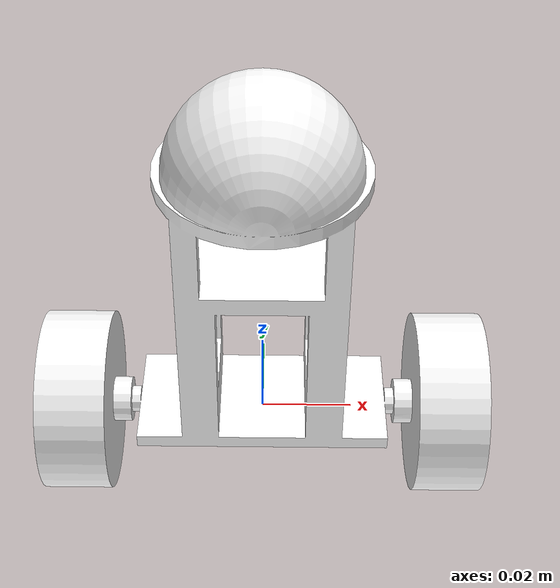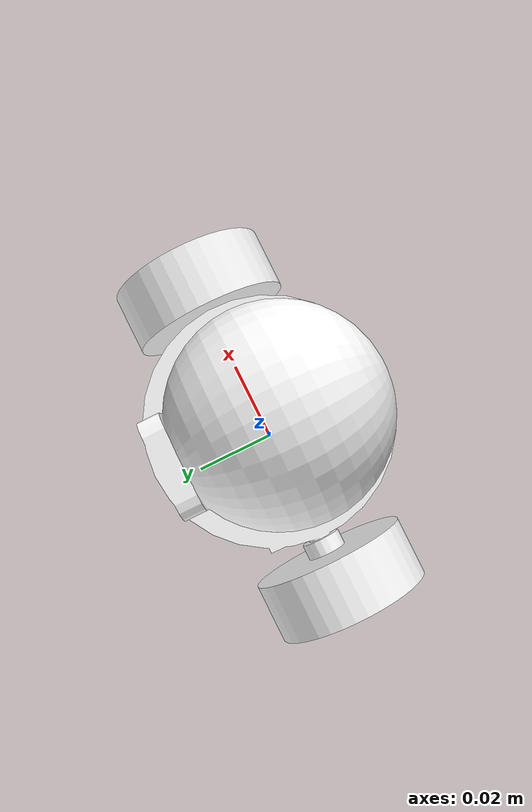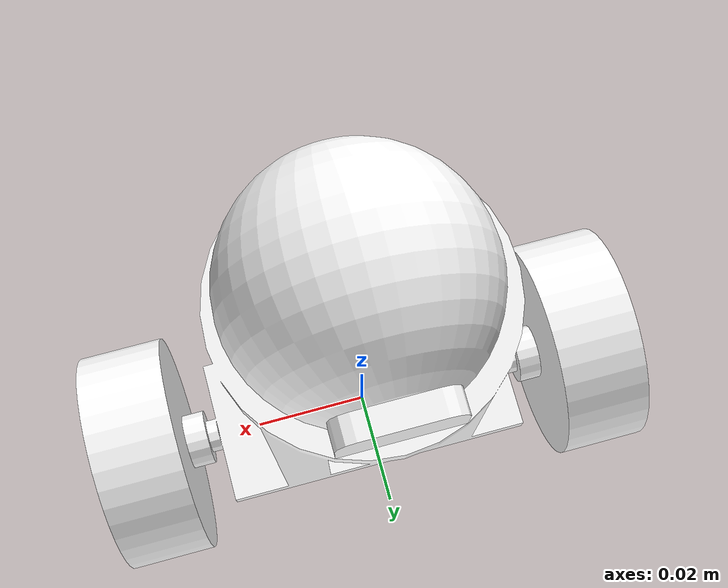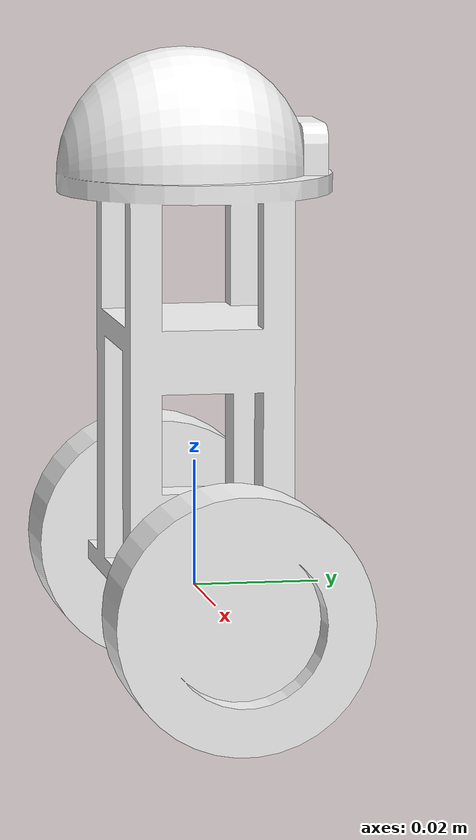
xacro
<?xml version="1.0"?>
<robot name="mycar" xmlns:xacro="http://www.ros.org/wiki/xacro">

    <xacro:include filename="$(find mycar_description)/urdf/xacro/mycar.gazebo" />

  <link name="base_footprint">
      <visual>
          <geometry>
                  <box size="0.001 0.001 0.001"/>
              </geometry>
          <origin rpy="0 0 0" xyz="-3.46944695195361E-18 -0.000646422945483935 0"/>
      </visual>
  </link>

  <gazebo reference="base_footprint">
      <material>Gazebo/Green</material>
      <turnGravityOff>false</turnGravityOff>
  </gazebo>

  <joint name="base_footprint_joint" type="fixed">
      <origin xyz="0 0 0" />
      <parent link="base_footprint" />
      <child link="body" />
  </joint>

  <link name="body">
    <inertial>
      <origin
        xyz="0 -0.000646422945483935 0.0455884253598942"
        rpy="0 0 0" />
      <mass
        value="0.0365474725376583" />
      <inertia
        ixx="3.26329834997654E-05"
        ixy="-1.88550033460057E-21"
        ixz="2.62801861772126E-21"
        iyy="3.48332159382441E-05"
        iyz="6.83951771998764E-07"
        izz="8.75024005906324E-06" />
    </inertial>
    <visual>
      <origin
        xyz="0 0 0"
        rpy="0 0 0" />
      <geometry>
        <mesh
          filename="package://mycar_description/meshes/body.STL" />
      </geometry>
      <material
        name="">
        <color
          rgba="1 1 1 1" />
      </material>
    </visual>
    <collision>
      <origin
        xyz="0 0 0"
        rpy="0 0 0" />
      <geometry>
        <mesh
          filename="package://mycar_description/meshes/body.STL" />
      </geometry>
    </collision>
  </link>

  <joint name="joint_Rwheel"
    type="continuous">
    <origin
      xyz="0.0295 0 0.0015"
      rpy="0 0 0" />
    <parent
      link="body" />
    <child
      link="R_wheel" />
    <axis
      xyz="1 0 0" />
    <dynamics friction="0.00"/>
    <limit
      effort="5"
      velocity="500" />
  </joint>

  <link name="R_wheel">
    <inertial>
      <origin
        xyz="0.010498789346247 0 0"
        rpy="0 0 0" />
      <mass
        value="0.0162184720741573" />
      <inertia
        ixx="3.54374105694189E-06"
        ixy="-2.47483152176292E-22"
        ixz="7.10467694681252E-23"
        iyy="2.06933678659425E-06"
        iyz="-7.16634449861902E-39"
        izz="2.06933678659425E-06" />
    </inertial>
    <visual>
      <origin
        xyz="0 0 0"
        rpy="0 0 0" />
      <geometry>
        <mesh
          filename="package://mycar_description/meshes/R_wheel.STL" />
      </geometry>
      <material
        name="">
        <color
          rgba="1 1 1 1" />
      </material>
    </visual>
    <collision>
      <origin
        xyz="0 0 0"
        rpy="0 0 0" />
      <geometry>
        <mesh
          filename="package://mycar_description/meshes/R_wheel.STL" />
      </geometry>
    </collision>
  </link>

  <joint name="joint_Lwheel" type="continuous">
    <origin
      xyz="-0.0295 0 0.0015"
      rpy="0 0 0" />
    <parent
      link="body" />
    <child
      link="L_wheel" />
    <axis
      xyz="1 0 0" />

    <dynamics friction="0.00"/>
    <limit
      effort="5"
      velocity="500" />
  </joint>

  <link name="L_wheel">
    <inertial>
      <origin
        xyz="-0.010498789346247 0 0"
        rpy="0 0 0" />
      <mass
        value="0.0162184720741573" />
      <inertia
        ixx="3.54374105694189E-06"
        ixy="2.98844999959475E-22"
        ixz="1.58659667235976E-38"
        iyy="2.06933678659425E-06"
        iyz="1.17549435082229E-38"
        izz="2.06933678659425E-06" />
    </inertial>
    <visual>
      <origin
        xyz="0 0 0"
        rpy="0 0 0" />
      <geometry>
        <mesh
          filename="package://mycar_description/meshes/L_wheel.STL" />
      </geometry>
      <material
        name="">
        <color
          rgba="1 1 1 1" />
      </material>
    </visual>
    <collision>
      <origin
        xyz="0 0 0"
        rpy="0 0 0" />
      <geometry>
        <mesh
          filename="package://mycar_description/meshes/L_wheel.STL" />
      </geometry>
    </collision>
  </link>

  <transmission name="left">
    <type>transmission_interface/SimpleTransmission</type>
    <joint name="joint_Lwheel">
      <hardwareInterface>hardware_interface/VelocityJointInterface</hardwareInterface>
    </joint>
    <actuator name="motor_l">
      <hardwareInterface>hardware_interface/VelocityJointInterface</hardwareInterface>
      <mechanicalReduction>0.5</mechanicalReduction>
    </actuator>
  </transmission>

  <transmission name="right">
    <type>transmission_interface/SimpleTransmission</type>
    <joint name="joint_Rwheel">
      <hardwareInterface>hardware_interface/VelocityJointInterface</hardwareInterface>
    </joint>
    <actuator name="motor_r">
      <hardwareInterface>hardware_interface/VelocityJointInterface</hardwareInterface>
      <mechanicalReduction>0.5</mechanicalReduction>
    </actuator>
  </transmission>
</robot>
